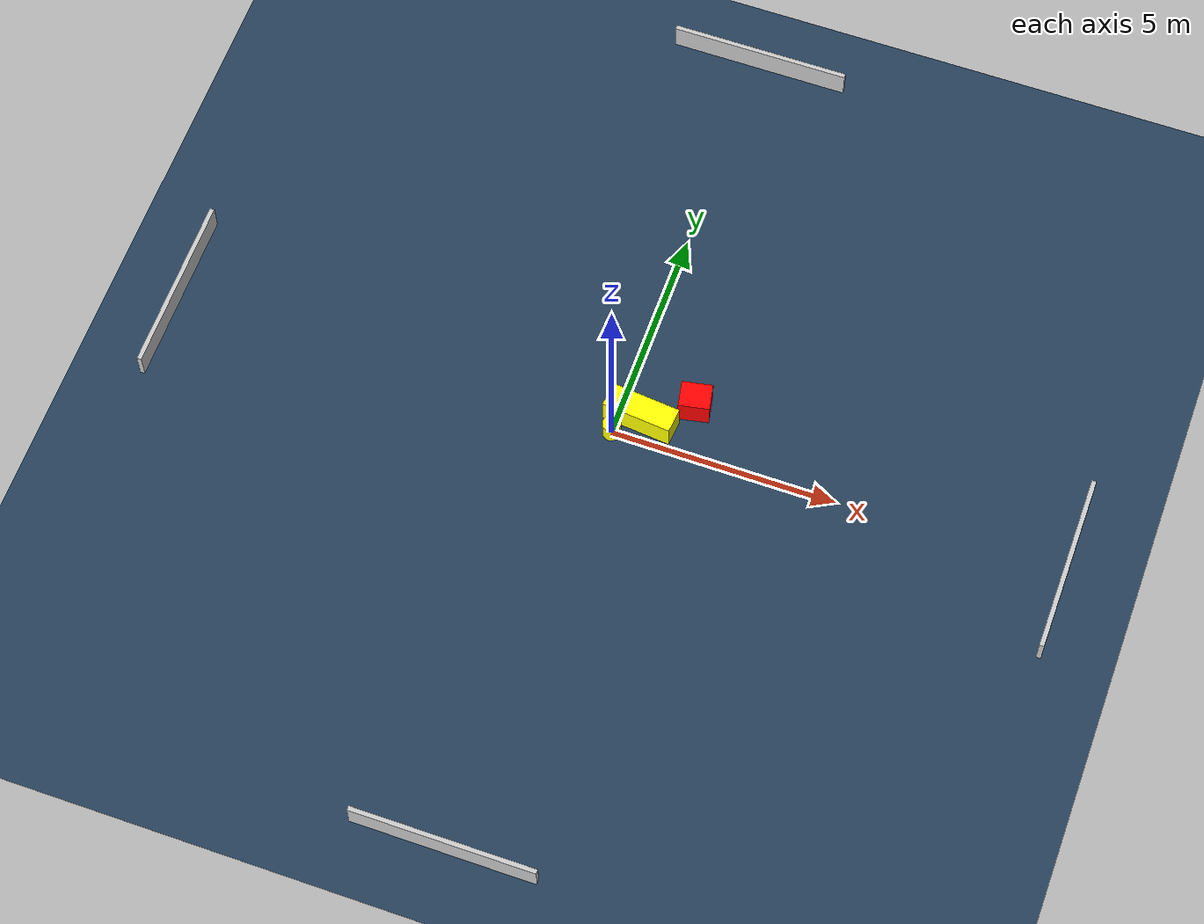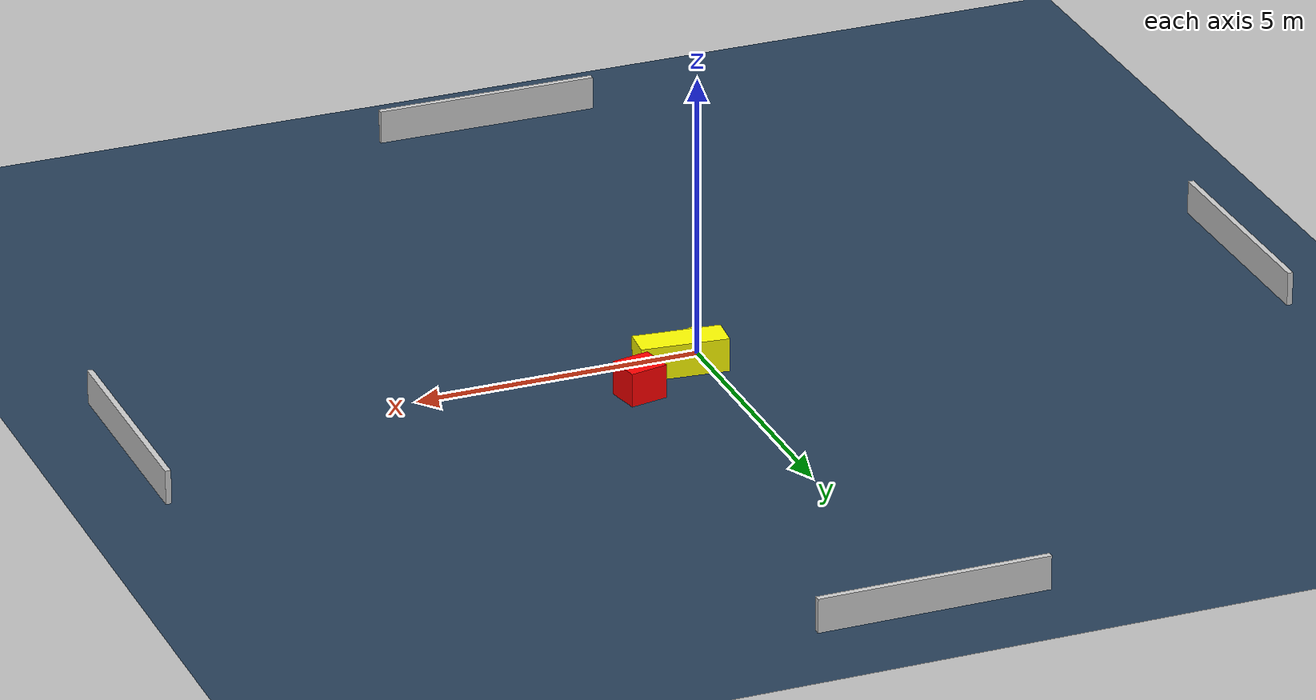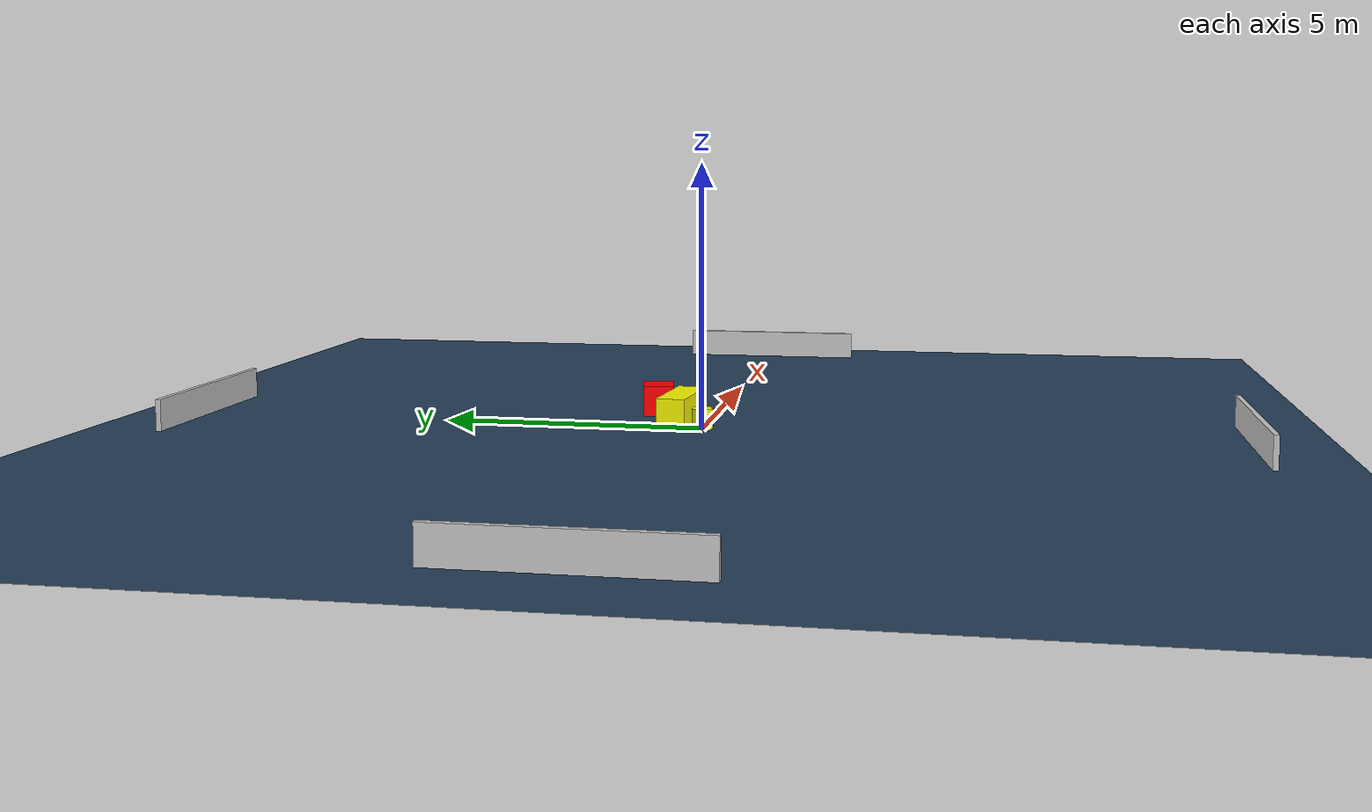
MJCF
<?xml version="1.0" ?>
<mujoco model="generated_environment">
  <option timestep="0.01" integrator="RK4" cone="elliptic"/>
  <default>
    <geom density="1"/>
  </default>
  <asset>
    <texture builtin="gradient" height="3072" name="skybox" rgb1="0.3 0.5 0.7" rgb2="0 0 0" type="skybox" width="512"/>
    <texture builtin="checker" height="300" name="groundplane" rgb1="0.2 0.3 0.4" rgb2="0.1 0.2 0.3" type="2d" width="300"/>
    <material name="groundplane" reflectance="0.2" texrepeat="5 5" texture="groundplane"/>
  </asset>
  <worldbody>
    <light dir="0 0 -1" directional="true" pos="0 0 1.5"/>
    <geom condim="3" friction="0.5 0.005 0.001" material="groundplane" name="floor" pos="0 0 0" size="0 0 0.05" type="plane"/>
    <body name="walls">
      <geom name="wall_1" condim="4" pos="-10.0 0.0 0.3" rgba="0.800000011920929 0.800000011920929 0.800000011920929 1.0" size="0.05 2.0 0.3" type="box"/>
      <geom name="wall_2" condim="4" pos="10.0 0.0 0.3" rgba="0.800000011920929 0.800000011920929 0.800000011920929 1.0" size="0.05 2.0 0.3" type="box"/>
      <geom name="wall_3" condim="4" pos="0.0 -10.0 0.3" rgba="0.800000011920929 0.800000011920929 0.800000011920929 1.0" size="2.0 0.05 0.3" type="box"/>
      <geom name="wall_4" condim="4" pos="0.0 10.0 0.3" rgba="0.800000011920929 0.800000011920929 0.800000011920929 1.0" size="2.0 0.05 0.3" type="box"/>
    </body>
    <body name="robot">
      <joint name="joint_x" type="slide" pos="0 0 0" axis="1 0 0"/>
      <joint name="joint_y" type="slide" pos="0 0 0" axis="0 1 0"/>
      <geom name="robot" type="cylinder" pos="0.0 0.0 0.2" size="0.2 0.2 0.0" mass="5.0" friction="1.0 0.005 0.0001" condim="4" rgba="1.0 1.0 0.0 1.0"/>
    </body>
    <body name="obstacle_1_movable">
      <geom name="obstacle_1_movable" condim="4" pos="0.48969006992552 0.4861500387603036 0.3" euler="0 0 354.47529290957164" friction="0.0 0.005 0.001" rgba="1.0 1.0 0.0 1.0" size="0.7693338852839879 0.2770298667739952 0.3" type="box" mass="0.1"/>
      <joint type="free"/>
    </body>
    <body name="obstacle_2_static">
      <geom name="obstacle_2_static" condim="4" pos="1.48299959577572 1.1428210800938527 0.3" euler="0 0 101.08977468404966" friction="0.0 0.005 0.001" rgba="1.0 0.0 0.0 1.0" size="0.2958356427535053 0.338210613405152 0.3" type="box"/>
    </body>
  </worldbody>
  <actuator>
    <motor name="actuator_x" joint="joint_x" gear="1" ctrlrange="-1 1"/>
    <motor name="actuator_y" joint="joint_y" gear="1" ctrlrange="-1 1"/>
  </actuator>
</mujoco>
